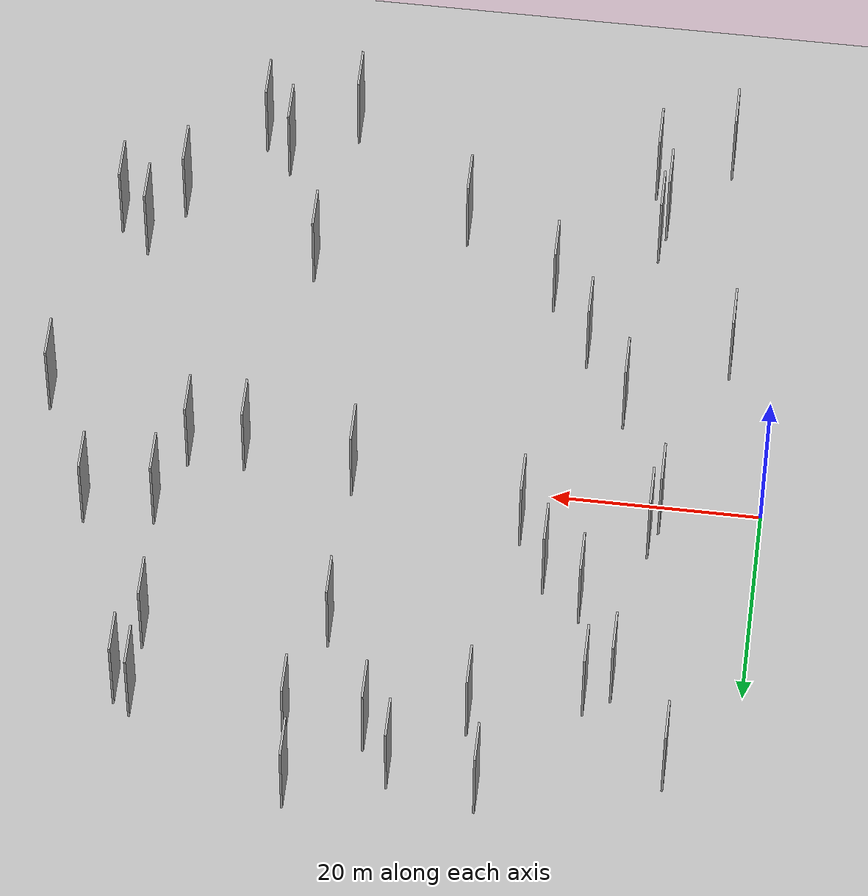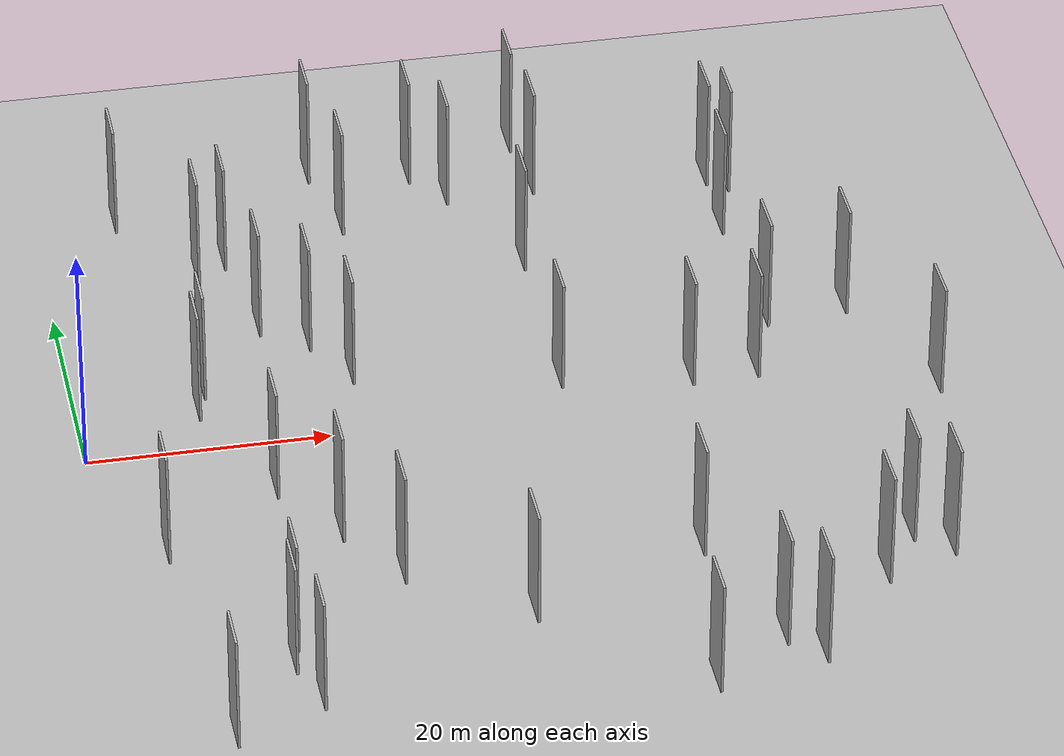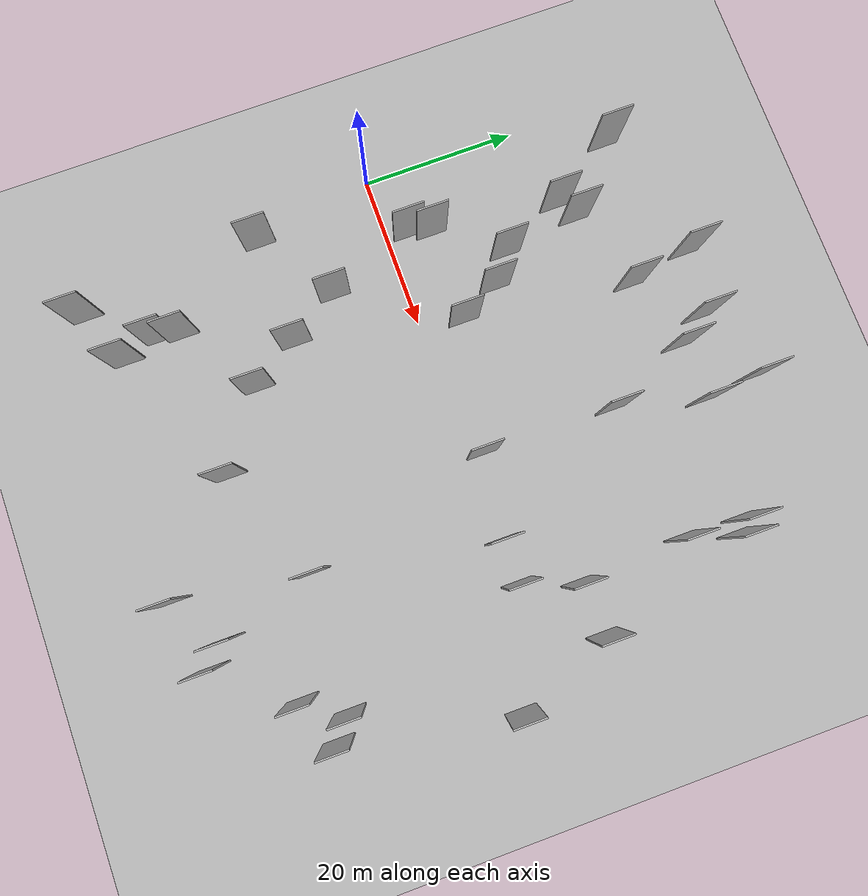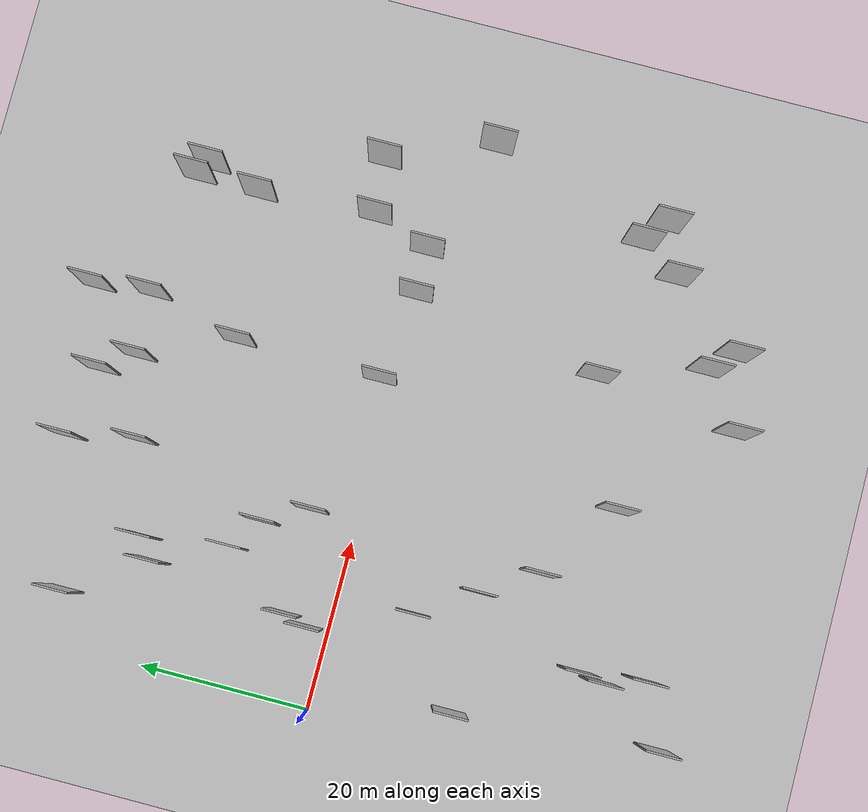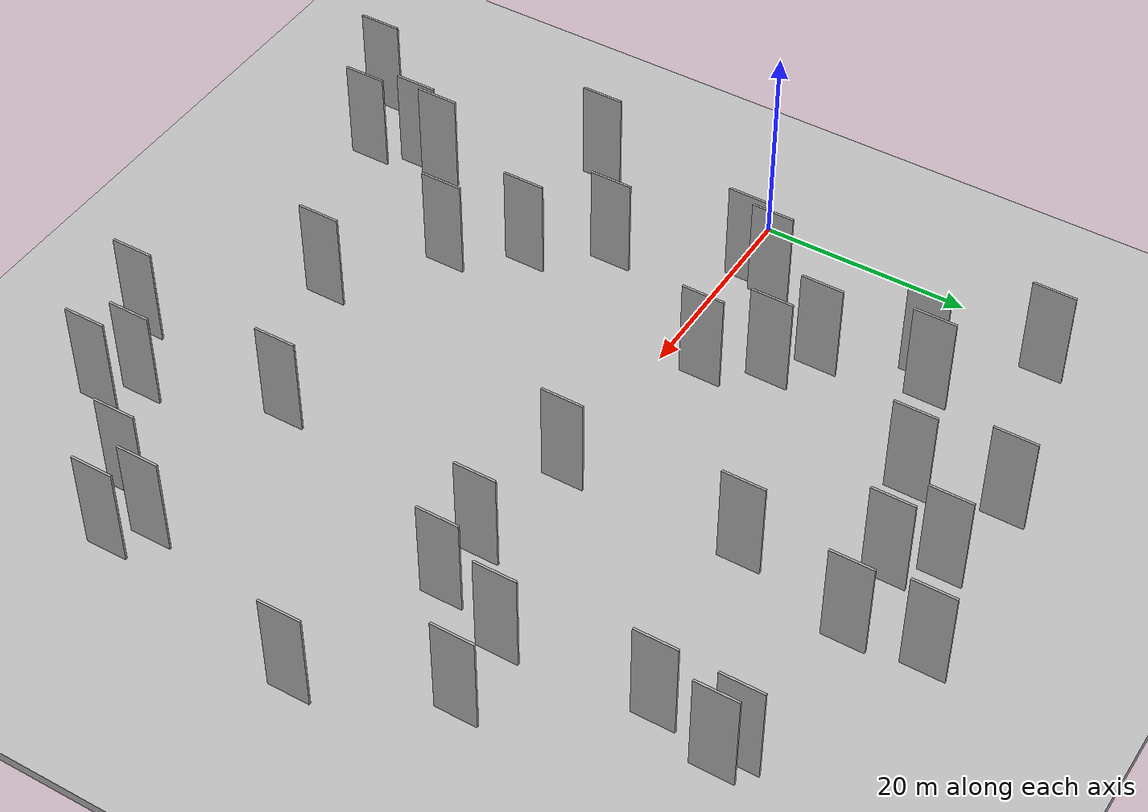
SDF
<?xml version="1.0" encoding="utf-8"?>

<sdf version="1.6">

   <world name="default">

      <gui fullscreen="0">

         <camera name="user_camera">

            <pose>-15 0 4.57585 0 0 0</pose>

            <view_controller>orbit</view_controller>

         </camera>

      </gui>

      <scene>

         <sky>

           <clouds>

             <speed>12</speed>

           </clouds>

         </sky>

         <ambient>0.4 0.4 0.4 1</ambient>

         <background>0.7 0.7 0.7 1</background>

         <shadows>1</shadows>

      </scene>

      <gravity>0 0 -9.8066</gravity>

      <magnetic_field>6e-06 2.3e-05 -4.2e-05</magnetic_field>

      <physics default="0" name="default_physics" type="ode">

         <ode>

            <solver>

               <type>quick</type>

               <iters>10</iters>

               <sor>1.0</sor>

               <use_dynamic_moi_rescaling>0</use_dynamic_moi_rescaling>

            </solver>

            <constraints>

               <cfm>0</cfm>

               <erp>0.2</erp>

               <contact_max_correcting_vel>100</contact_max_correcting_vel>

               <contact_surface_layer>0.001</contact_surface_layer>

            </constraints>

         </ode>

         <max_step_size>0.004</max_step_size>

         <real_time_factor>1</real_time_factor>

         <real_time_update_rate>250</real_time_update_rate>

      </physics>

      <light name="sun" type="directional">

         <cast_shadows>1</cast_shadows>

         <pose>0 0 10 0 0 0</pose>

         <diffuse>0.8 0.8 0.8 1</diffuse>

         <specular>0.2 0.2 0.2 1</specular>

         <attenuation>

            <range>1000</range>

            <constant>0.9</constant>

            <linear>0.01</linear>

            <quadratic>0.001</quadratic>

         </attenuation>

         <direction>-0.5 0.1 -0.9</direction>

      </light>

      <include>

         <name>ground_plane_1</name>

         <uri>model://HANNAS_ground_plane</uri>

         <pose>0 0 0  0 0 0</pose>

      </include>

      <include>

         <name>ground_plane_2</name>

         <uri>model://HANNAS_ground_plane</uri>

         <pose>100 0 0  0 0 0</pose>

      </include>

      <model name="HANNAS_wall_1">

         <static>1</static>

         <pose frame="">31.9503 32.8959 2.5 0.000000 0.000000 1.570796</pose>

         <link name="link">

            <pose frame="">0 0 5.00 0 0 0</pose>

            <collision name="collision">

               <geometry>

                  <box>

                     <size>4.00 0.2 10.00</size>

                  </box>

               </geometry>

               <max_contacts>10</max_contacts>

               <surface>

                  <contact>

                     <ode/>

                  </contact>

                  <bounce/>

                  <friction>

                     <torsional>

                        <ode/>

                     </torsional>

                     <ode/>

                  </friction>

               </surface>

            </collision>

            <visual name="visual">

               <cast_shadows>0</cast_shadows>

               <geometry>

                  <box>

                     <size>4.00 0.2 10.00</size>

                  </box>

               </geometry>

               <material>

                  <script>

                     <uri>model://HANNAS_wall/materials/scripts</uri>

                     <uri>model://HANNAS_wall/materials/textures</uri>

                     <name>vrc/HANNAS_wall</name>

                  </script>

               </material>

            </visual>

            <self_collide>0</self_collide>

            <enable_wind>0</enable_wind>

            <kinematic>0</kinematic>

         </link>

      </model>

      <model name="HANNAS_wall_2">

         <static>1</static>

         <pose frame="">68.8717 -4.7218 2.5 0.000000 0.000000 1.570796</pose>

         <link name="link">

            <pose frame="">0 0 5.00 0 0 0</pose>

            <collision name="collision">

               <geometry>

                  <box>

                     <size>4.00 0.2 10.00</size>

                  </box>

               </geometry>

               <max_contacts>10</max_contacts>

               <surface>

                  <contact>

                     <ode/>

                  </contact>

                  <bounce/>

                  <friction>

                     <torsional>

                        <ode/>

                     </torsional>

                     <ode/>

                  </friction>

               </surface>

            </collision>

            <visual name="visual">

               <cast_shadows>0</cast_shadows>

               <geometry>

                  <box>

                     <size>4.00 0.2 10.00</size>

                  </box>

               </geometry>

               <material>

                  <script>

                     <uri>model://HANNAS_wall/materials/scripts</uri>

                     <uri>model://HANNAS_wall/materials/textures</uri>

                     <name>vrc/HANNAS_wall</name>

                  </script>

               </material>

            </visual>

            <self_collide>0</self_collide>

            <enable_wind>0</enable_wind>

            <kinematic>0</kinematic>

         </link>

      </model>

      <model name="HANNAS_wall_3">

         <static>1</static>

         <pose frame="">19.7337 10.3597 2.5 0.000000 0.000000 1.570796</pose>

         <link name="link">

            <pose frame="">0 0 5.00 0 0 0</pose>

            <collision name="collision">

               <geometry>

                  <box>

                     <size>4.00 0.2 10.00</size>

                  </box>

               </geometry>

               <max_contacts>10</max_contacts>

               <surface>

                  <contact>

                     <ode/>

                  </contact>

                  <bounce/>

                  <friction>

                     <torsional>

                        <ode/>

                     </torsional>

                     <ode/>

                  </friction>

               </surface>

            </collision>

            <visual name="visual">

               <cast_shadows>0</cast_shadows>

               <geometry>

                  <box>

                     <size>4.00 0.2 10.00</size>

                  </box>

               </geometry>

               <material>

                  <script>

                     <uri>model://HANNAS_wall/materials/scripts</uri>

                     <uri>model://HANNAS_wall/materials/textures</uri>

                     <name>vrc/HANNAS_wall</name>

                  </script>

               </material>

            </visual>

            <self_collide>0</self_collide>

            <enable_wind>0</enable_wind>

            <kinematic>0</kinematic>

         </link>

      </model>

      <model name="HANNAS_wall_4">

         <static>1</static>

         <pose frame="">43.0934 -39.1946 2.5 0.000000 0.000000 1.570796</pose>

         <link name="link">

            <pose frame="">0 0 5.00 0 0 0</pose>

            <collision name="collision">

               <geometry>

                  <box>

                     <size>4.00 0.2 10.00</size>

                  </box>

               </geometry>

               <max_contacts>10</max_contacts>

               <surface>

                  <contact>

                     <ode/>

                  </contact>

                  <bounce/>

                  <friction>

                     <torsional>

                        <ode/>

                     </torsional>

                     <ode/>

                  </friction>

               </surface>

            </collision>

            <visual name="visual">

               <cast_shadows>0</cast_shadows>

               <geometry>

                  <box>

                     <size>4.00 0.2 10.00</size>

                  </box>

               </geometry>

               <material>

                  <script>

                     <uri>model://HANNAS_wall/materials/scripts</uri>

                     <uri>model://HANNAS_wall/materials/textures</uri>

                     <name>vrc/HANNAS_wall</name>

                  </script>

               </material>

            </visual>

            <self_collide>0</self_collide>

            <enable_wind>0</enable_wind>

            <kinematic>0</kinematic>

         </link>

      </model>

      <model name="HANNAS_wall_5">

         <static>1</static>

         <pose frame="">38.9406 1.5476 2.5 0.000000 0.000000 1.570796</pose>

         <link name="link">

            <pose frame="">0 0 5.00 0 0 0</pose>

            <collision name="collision">

               <geometry>

                  <box>

                     <size>4.00 0.2 10.00</size>

                  </box>

               </geometry>

               <max_contacts>10</max_contacts>

               <surface>

                  <contact>

                     <ode/>

                  </contact>

                  <bounce/>

                  <friction>

                     <torsional>

                        <ode/>

                     </torsional>

                     <ode/>

                  </friction>

               </surface>

            </collision>

            <visual name="visual">

               <cast_shadows>0</cast_shadows>

               <geometry>

                  <box>

                     <size>4.00 0.2 10.00</size>

                  </box>

               </geometry>

               <material>

                  <script>

                     <uri>model://HANNAS_wall/materials/scripts</uri>

                     <uri>model://HANNAS_wall/materials/textures</uri>

                     <name>vrc/HANNAS_wall</name>

                  </script>

               </material>

            </visual>

            <self_collide>0</self_collide>

            <enable_wind>0</enable_wind>

            <kinematic>0</kinematic>

         </link>

      </model>

      <model name="HANNAS_wall_6">

         <static>1</static>

         <pose frame="">64.7771 -25.9482 2.5 0.000000 0.000000 1.570796</pose>

         <link name="link">

            <pose frame="">0 0 5.00 0 0 0</pose>

            <collision name="collision">

               <geometry>

                  <box>

                     <size>4.00 0.2 10.00</size>

                  </box>

               </geometry>

               <max_contacts>10</max_contacts>

               <surface>

                  <contact>

                     <ode/>

                  </contact>

                  <bounce/>

                  <friction>

                     <torsional>

                        <ode/>

                     </torsional>

                     <ode/>

                  </friction>

               </surface>

            </collision>

            <visual name="visual">

               <cast_shadows>0</cast_shadows>

               <geometry>

                  <box>

                     <size>4.00 0.2 10.00</size>

                  </box>

               </geometry>

               <material>

                  <script>

                     <uri>model://HANNAS_wall/materials/scripts</uri>

                     <uri>model://HANNAS_wall/materials/textures</uri>

                     <name>vrc/HANNAS_wall</name>

                  </script>

               </material>

            </visual>

            <self_collide>0</self_collide>

            <enable_wind>0</enable_wind>

            <kinematic>0</kinematic>

         </link>

      </model>

      <model name="HANNAS_wall_7">

         <static>1</static>

         <pose frame="">57.2019 6.8845 2.5 0.000000 0.000000 1.570796</pose>

         <link name="link">

            <pose frame="">0 0 5.00 0 0 0</pose>

            <collision name="collision">

               <geometry>

                  <box>

                     <size>4.00 0.2 10.00</size>

                  </box>

               </geometry>

               <max_contacts>10</max_contacts>

               <surface>

                  <contact>

                     <ode/>

                  </contact>

                  <bounce/>

                  <friction>

                     <torsional>

                        <ode/>

                     </torsional>

                     <ode/>

                  </friction>

               </surface>

            </collision>

            <visual name="visual">

               <cast_shadows>0</cast_shadows>

               <geometry>

                  <box>

                     <size>4.00 0.2 10.00</size>

                  </box>

               </geometry>

               <material>

                  <script>

                     <uri>model://HANNAS_wall/materials/scripts</uri>

                     <uri>model://HANNAS_wall/materials/textures</uri>

                     <name>vrc/HANNAS_wall</name>

                  </script>

               </material>

            </visual>

            <self_collide>0</self_collide>

            <enable_wind>0</enable_wind>

            <kinematic>0</kinematic>

         </link>

      </model>

      <model name="HANNAS_wall_8">

         <static>1</static>

         <pose frame="">21.9686 -21.5292 2.5 0.000000 0.000000 1.570796</pose>

         <link name="link">

            <pose frame="">0 0 5.00 0 0 0</pose>

            <collision name="collision">

               <geometry>

                  <box>

                     <size>4.00 0.2 10.00</size>

                  </box>

               </geometry>

               <max_contacts>10</max_contacts>

               <surface>

                  <contact>

                     <ode/>

                  </contact>

                  <bounce/>

                  <friction>

                     <torsional>

                        <ode/>

                     </torsional>

                     <ode/>

                  </friction>

               </surface>

            </collision>

            <visual name="visual">

               <cast_shadows>0</cast_shadows>

               <geometry>

                  <box>

                     <size>4.00 0.2 10.00</size>

                  </box>

               </geometry>

               <material>

                  <script>

                     <uri>model://HANNAS_wall/materials/scripts</uri>

                     <uri>model://HANNAS_wall/materials/textures</uri>

                     <name>vrc/HANNAS_wall</name>

                  </script>

               </material>

            </visual>

            <self_collide>0</self_collide>

            <enable_wind>0</enable_wind>

            <kinematic>0</kinematic>

         </link>

      </model>

      <model name="HANNAS_wall_9">

         <static>1</static>

         <pose frame="">9.4841 2.5452 2.5 0.000000 0.000000 1.570796</pose>

         <link name="link">

            <pose frame="">0 0 5.00 0 0 0</pose>

            <collision name="collision">

               <geometry>

                  <box>

                     <size>4.00 0.2 10.00</size>

                  </box>

               </geometry>

               <max_contacts>10</max_contacts>

               <surface>

                  <contact>

                     <ode/>

                  </contact>

                  <bounce/>

                  <friction>

                     <torsional>

                        <ode/>

                     </torsional>

                     <ode/>

                  </friction>

               </surface>

            </collision>

            <visual name="visual">

               <cast_shadows>0</cast_shadows>

               <geometry>

                  <box>

                     <size>4.00 0.2 10.00</size>

                  </box>

               </geometry>

               <material>

                  <script>

                     <uri>model://HANNAS_wall/materials/scripts</uri>

                     <uri>model://HANNAS_wall/materials/textures</uri>

                     <name>vrc/HANNAS_wall</name>

                  </script>

               </material>

            </visual>

            <self_collide>0</self_collide>

            <enable_wind>0</enable_wind>

            <kinematic>0</kinematic>

         </link>

      </model>

      <model name="HANNAS_wall_10">

         <static>1</static>

         <pose frame="">12.2216 21.3831 2.5 0.000000 0.000000 1.570796</pose>

         <link name="link">

            <pose frame="">0 0 5.00 0 0 0</pose>

            <collision name="collision">

               <geometry>

                  <box>

                     <size>4.00 0.2 10.00</size>

                  </box>

               </geometry>

               <max_contacts>10</max_contacts>

               <surface>

                  <contact>

                     <ode/>

                  </contact>

                  <bounce/>

                  <friction>

                     <torsional>

                        <ode/>

                     </torsional>

                     <ode/>

                  </friction>

               </surface>

            </collision>

            <visual name="visual">

               <cast_shadows>0</cast_shadows>

               <geometry>

                  <box>

                     <size>4.00 0.2 10.00</size>

                  </box>

               </geometry>

               <material>

                  <script>

                     <uri>model://HANNAS_wall/materials/scripts</uri>

                     <uri>model://HANNAS_wall/materials/textures</uri>

                     <name>vrc/HANNAS_wall</name>

                  </script>

               </material>

            </visual>

            <self_collide>0</self_collide>

            <enable_wind>0</enable_wind>

            <kinematic>0</kinematic>

         </link>

      </model>

      <model name="HANNAS_wall_11">

         <static>1</static>

         <pose frame="">6.1070 -39.0108 2.5 0.000000 0.000000 1.570796</pose>

         <link name="link">

            <pose frame="">0 0 5.00 0 0 0</pose>

            <collision name="collision">

               <geometry>

                  <box>

                     <size>4.00 0.2 10.00</size>

                  </box>

               </geometry>

               <max_contacts>10</max_contacts>

               <surface>

                  <contact>

                     <ode/>

                  </contact>

                  <bounce/>

                  <friction>

                     <torsional>

                        <ode/>

                     </torsional>

                     <ode/>

                  </friction>

               </surface>

            </collision>

            <visual name="visual">

               <cast_shadows>0</cast_shadows>

               <geometry>

                  <box>

                     <size>4.00 0.2 10.00</size>

                  </box>

               </geometry>

               <material>

                  <script>

                     <uri>model://HANNAS_wall/materials/scripts</uri>

                     <uri>model://HANNAS_wall/materials/textures</uri>

                     <name>vrc/HANNAS_wall</name>

                  </script>

               </material>

            </visual>

            <self_collide>0</self_collide>

            <enable_wind>0</enable_wind>

            <kinematic>0</kinematic>

         </link>

      </model>

      <model name="HANNAS_wall_12">

         <static>1</static>

         <pose frame="">58.2623 26.7752 2.5 0.000000 0.000000 1.570796</pose>

         <link name="link">

            <pose frame="">0 0 5.00 0 0 0</pose>

            <collision name="collision">

               <geometry>

                  <box>

                     <size>4.00 0.2 10.00</size>

                  </box>

               </geometry>

               <max_contacts>10</max_contacts>

               <surface>

                  <contact>

                     <ode/>

                  </contact>

                  <bounce/>

                  <friction>

                     <torsional>

                        <ode/>

                     </torsional>

                     <ode/>

                  </friction>

               </surface>

            </collision>

            <visual name="visual">

               <cast_shadows>0</cast_shadows>

               <geometry>

                  <box>

                     <size>4.00 0.2 10.00</size>

                  </box>

               </geometry>

               <material>

                  <script>

                     <uri>model://HANNAS_wall/materials/scripts</uri>

                     <uri>model://HANNAS_wall/materials/textures</uri>

                     <name>vrc/HANNAS_wall</name>

                  </script>

               </material>

            </visual>

            <self_collide>0</self_collide>

            <enable_wind>0</enable_wind>

            <kinematic>0</kinematic>

         </link>

      </model>

      <model name="HANNAS_wall_13">

         <static>1</static>

         <pose frame="">14.6903 23.0575 2.5 0.000000 0.000000 1.570796</pose>

         <link name="link">

            <pose frame="">0 0 5.00 0 0 0</pose>

            <collision name="collision">

               <geometry>

                  <box>

                     <size>4.00 0.2 10.00</size>

                  </box>

               </geometry>

               <max_contacts>10</max_contacts>

               <surface>

                  <contact>

                     <ode/>

                  </contact>

                  <bounce/>

                  <friction>

                     <torsional>

                        <ode/>

                     </torsional>

                     <ode/>

                  </friction>

               </surface>

            </collision>

            <visual name="visual">

               <cast_shadows>0</cast_shadows>

               <geometry>

                  <box>

                     <size>4.00 0.2 10.00</size>

                  </box>

               </geometry>

               <material>

                  <script>

                     <uri>model://HANNAS_wall/materials/scripts</uri>

                     <uri>model://HANNAS_wall/materials/textures</uri>

                     <name>vrc/HANNAS_wall</name>

                  </script>

               </material>

            </visual>

            <self_collide>0</self_collide>

            <enable_wind>0</enable_wind>

            <kinematic>0</kinematic>

         </link>

      </model>

      <model name="HANNAS_wall_14">

         <static>1</static>

         <pose frame="">23.5910 34.5217 2.5 0.000000 0.000000 1.570796</pose>

         <link name="link">

            <pose frame="">0 0 5.00 0 0 0</pose>

            <collision name="collision">

               <geometry>

                  <box>

                     <size>4.00 0.2 10.00</size>

                  </box>

               </geometry>

               <max_contacts>10</max_contacts>

               <surface>

                  <contact>

                     <ode/>

                  </contact>

                  <bounce/>

                  <friction>

                     <torsional>

                        <ode/>

                     </torsional>

                     <ode/>

                  </friction>

               </surface>

            </collision>

            <visual name="visual">

               <cast_shadows>0</cast_shadows>

               <geometry>

                  <box>

                     <size>4.00 0.2 10.00</size>

                  </box>

               </geometry>

               <material>

                  <script>

                     <uri>model://HANNAS_wall/materials/scripts</uri>

                     <uri>model://HANNAS_wall/materials/textures</uri>

                     <name>vrc/HANNAS_wall</name>

                  </script>

               </material>

            </visual>

            <self_collide>0</self_collide>

            <enable_wind>0</enable_wind>

            <kinematic>0</kinematic>

         </link>

      </model>

      <model name="HANNAS_wall_15">

         <static>1</static>

         <pose frame="">62.0115 -23.6077 2.5 0.000000 0.000000 1.570796</pose>

         <link name="link">

            <pose frame="">0 0 5.00 0 0 0</pose>

            <collision name="collision">

               <geometry>

                  <box>

                     <size>4.00 0.2 10.00</size>

                  </box>

               </geometry>

               <max_contacts>10</max_contacts>

               <surface>

                  <contact>

                     <ode/>

                  </contact>

                  <bounce/>

                  <friction>

                     <torsional>

                        <ode/>

                     </torsional>

                     <ode/>

                  </friction>

               </surface>

            </collision>

            <visual name="visual">

               <cast_shadows>0</cast_shadows>

               <geometry>

                  <box>

                     <size>4.00 0.2 10.00</size>

                  </box>

               </geometry>

               <material>

                  <script>

                     <uri>model://HANNAS_wall/materials/scripts</uri>

                     <uri>model://HANNAS_wall/materials/textures</uri>

                     <name>vrc/HANNAS_wall</name>

                  </script>

               </material>

            </visual>

            <self_collide>0</self_collide>

            <enable_wind>0</enable_wind>

            <kinematic>0</kinematic>

         </link>

      </model>

      <model name="HANNAS_wall_16">

         <static>1</static>

         <pose frame="">39.1364 18.4149 2.5 0.000000 0.000000 1.570796</pose>

         <link name="link">

            <pose frame="">0 0 5.00 0 0 0</pose>

            <collision name="collision">

               <geometry>

                  <box>

                     <size>4.00 0.2 10.00</size>

                  </box>

               </geometry>

               <max_contacts>10</max_contacts>

               <surface>

                  <contact>

                     <ode/>

                  </contact>

                  <bounce/>

                  <friction>

                     <torsional>

                        <ode/>

                     </torsional>

                     <ode/>

                  </friction>

               </surface>

            </collision>

            <visual name="visual">

               <cast_shadows>0</cast_shadows>

               <geometry>

                  <box>

                     <size>4.00 0.2 10.00</size>

                  </box>

               </geometry>

               <material>

                  <script>

                     <uri>model://HANNAS_wall/materials/scripts</uri>

                     <uri>model://HANNAS_wall/materials/textures</uri>

                     <name>vrc/HANNAS_wall</name>

                  </script>

               </material>

            </visual>

            <self_collide>0</self_collide>

            <enable_wind>0</enable_wind>

            <kinematic>0</kinematic>

         </link>

      </model>

      <model name="HANNAS_wall_17">

         <static>1</static>

         <pose frame="">56.6395 27.9971 2.5 0.000000 0.000000 1.570796</pose>

         <link name="link">

            <pose frame="">0 0 5.00 0 0 0</pose>

            <collision name="collision">

               <geometry>

                  <box>

                     <size>4.00 0.2 10.00</size>

                  </box>

               </geometry>

               <max_contacts>10</max_contacts>

               <surface>

                  <contact>

                     <ode/>

                  </contact>

                  <bounce/>

                  <friction>

                     <torsional>

                        <ode/>

                     </torsional>

                     <ode/>

                  </friction>

               </surface>

            </collision>

            <visual name="visual">

               <cast_shadows>0</cast_shadows>

               <geometry>

                  <box>

                     <size>4.00 0.2 10.00</size>

                  </box>

               </geometry>

               <material>

                  <script>

                     <uri>model://HANNAS_wall/materials/scripts</uri>

                     <uri>model://HANNAS_wall/materials/textures</uri>

                     <name>vrc/HANNAS_wall</name>

                  </script>

               </material>

            </visual>

            <self_collide>0</self_collide>

            <enable_wind>0</enable_wind>

            <kinematic>0</kinematic>

         </link>

      </model>

      <model name="HANNAS_wall_18">

         <static>1</static>

         <pose frame="">34.5440 29.1507 2.5 0.000000 0.000000 1.570796</pose>

         <link name="link">

            <pose frame="">0 0 5.00 0 0 0</pose>

            <collision name="collision">

               <geometry>

                  <box>

                     <size>4.00 0.2 10.00</size>

                  </box>

               </geometry>

               <max_contacts>10</max_contacts>

               <surface>

                  <contact>

                     <ode/>

                  </contact>

                  <bounce/>

                  <friction>

                     <torsional>

                        <ode/>

                     </torsional>

                     <ode/>

                  </friction>

               </surface>

            </collision>

            <visual name="visual">

               <cast_shadows>0</cast_shadows>

               <geometry>

                  <box>

                     <size>4.00 0.2 10.00</size>

                  </box>

               </geometry>

               <material>

                  <script>

                     <uri>model://HANNAS_wall/materials/scripts</uri>

                     <uri>model://HANNAS_wall/materials/textures</uri>

                     <name>vrc/HANNAS_wall</name>

                  </script>

               </material>

            </visual>

            <self_collide>0</self_collide>

            <enable_wind>0</enable_wind>

            <kinematic>0</kinematic>

         </link>

      </model>

      <model name="HANNAS_wall_19">

         <static>1</static>

         <pose frame="">45.4945 -22.3364 2.5 0.000000 0.000000 1.570796</pose>

         <link name="link">

            <pose frame="">0 0 5.00 0 0 0</pose>

            <collision name="collision">

               <geometry>

                  <box>

                     <size>4.00 0.2 10.00</size>

                  </box>

               </geometry>

               <max_contacts>10</max_contacts>

               <surface>

                  <contact>

                     <ode/>

                  </contact>

                  <bounce/>

                  <friction>

                     <torsional>

                        <ode/>

                     </torsional>

                     <ode/>

                  </friction>

               </surface>

            </collision>

            <visual name="visual">

               <cast_shadows>0</cast_shadows>

               <geometry>

                  <box>

                     <size>4.00 0.2 10.00</size>

                  </box>

               </geometry>

               <material>

                  <script>

                     <uri>model://HANNAS_wall/materials/scripts</uri>

                     <uri>model://HANNAS_wall/materials/textures</uri>

                     <name>vrc/HANNAS_wall</name>

                  </script>

               </material>

            </visual>

            <self_collide>0</self_collide>

            <enable_wind>0</enable_wind>

            <kinematic>0</kinematic>

         </link>

      </model>

      <model name="HANNAS_wall_20">

         <static>1</static>

         <pose frame="">12.3892 -28.4070 2.5 0.000000 0.000000 1.570796</pose>

         <link name="link">

            <pose frame="">0 0 5.00 0 0 0</pose>

            <collision name="collision">

               <geometry>

                  <box>

                     <size>4.00 0.2 10.00</size>

                  </box>

               </geometry>

               <max_contacts>10</max_contacts>

               <surface>

                  <contact>

                     <ode/>

                  </contact>

                  <bounce/>

                  <friction>

                     <torsional>

                        <ode/>

                     </torsional>

                     <ode/>

                  </friction>

               </surface>

            </collision>

            <visual name="visual">

               <cast_shadows>0</cast_shadows>

               <geometry>

                  <box>

                     <size>4.00 0.2 10.00</size>

                  </box>

               </geometry>

               <material>

                  <script>

                     <uri>model://HANNAS_wall/materials/scripts</uri>

                     <uri>model://HANNAS_wall/materials/textures</uri>

                     <name>vrc/HANNAS_wall</name>

                  </script>

               </material>

            </visual>

            <self_collide>0</self_collide>

            <enable_wind>0</enable_wind>

            <kinematic>0</kinematic>

         </link>

      </model>

      <model name="HANNAS_wall_21">

         <static>1</static>

         <pose frame="">54.8642 0.0872 2.5 0.000000 0.000000 1.570796</pose>

         <link name="link">

            <pose frame="">0 0 5.00 0 0 0</pose>

            <collision name="collision">

               <geometry>

                  <box>

                     <size>4.00 0.2 10.00</size>

                  </box>

               </geometry>

               <max_contacts>10</max_contacts>

               <surface>

                  <contact>

                     <ode/>

                  </contact>

                  <bounce/>

                  <friction>

                     <torsional>

                        <ode/>

                     </torsional>

                     <ode/>

                  </friction>

               </surface>

            </collision>

            <visual name="visual">

               <cast_shadows>0</cast_shadows>

               <geometry>

                  <box>

                     <size>4.00 0.2 10.00</size>

                  </box>

               </geometry>

               <material>

                  <script>

                     <uri>model://HANNAS_wall/materials/scripts</uri>

                     <uri>model://HANNAS_wall/materials/textures</uri>

                     <name>vrc/HANNAS_wall</name>

                  </script>

               </material>

            </visual>

            <self_collide>0</self_collide>

            <enable_wind>0</enable_wind>

            <kinematic>0</kinematic>

         </link>

      </model>

      <model name="HANNAS_wall_22">

         <static>1</static>

         <pose frame="">25.1687 26.4537 2.5 0.000000 0.000000 1.570796</pose>

         <link name="link">

            <pose frame="">0 0 5.00 0 0 0</pose>

            <collision name="collision">

               <geometry>

                  <box>

                     <size>4.00 0.2 10.00</size>

                  </box>

               </geometry>

               <max_contacts>10</max_contacts>

               <surface>

                  <contact>

                     <ode/>

                  </contact>

                  <bounce/>

                  <friction>

                     <torsional>

                        <ode/>

                     </torsional>

                     <ode/>

                  </friction>

               </surface>

            </collision>

            <visual name="visual">

               <cast_shadows>0</cast_shadows>

               <geometry>

                  <box>

                     <size>4.00 0.2 10.00</size>

                  </box>

               </geometry>

               <material>

                  <script>

                     <uri>model://HANNAS_wall/materials/scripts</uri>

                     <uri>model://HANNAS_wall/materials/textures</uri>

                     <name>vrc/HANNAS_wall</name>

                  </script>

               </material>

            </visual>

            <self_collide>0</self_collide>

            <enable_wind>0</enable_wind>

            <kinematic>0</kinematic>

         </link>

      </model>

      <model name="HANNAS_wall_23">

         <static>1</static>

         <pose frame="">51.9280 -37.1989 2.5 0.000000 0.000000 1.570796</pose>

         <link name="link">

            <pose frame="">0 0 5.00 0 0 0</pose>

            <collision name="collision">

               <geometry>

                  <box>

                     <size>4.00 0.2 10.00</size>

                  </box>

               </geometry>

               <max_contacts>10</max_contacts>

               <surface>

                  <contact>

                     <ode/>

                  </contact>

                  <bounce/>

                  <friction>

                     <torsional>

                        <ode/>

                     </torsional>

                     <ode/>

                  </friction>

               </surface>

            </collision>

            <visual name="visual">

               <cast_shadows>0</cast_shadows>

               <geometry>

                  <box>

                     <size>4.00 0.2 10.00</size>

                  </box>

               </geometry>

               <material>

                  <script>

                     <uri>model://HANNAS_wall/materials/scripts</uri>

                     <uri>model://HANNAS_wall/materials/textures</uri>

                     <name>vrc/HANNAS_wall</name>

                  </script>

               </material>

            </visual>

            <self_collide>0</self_collide>

            <enable_wind>0</enable_wind>

            <kinematic>0</kinematic>

         </link>

      </model>

      <model name="HANNAS_wall_24">

         <static>1</static>

         <pose frame="">56.4216 20.5683 2.5 0.000000 0.000000 1.570796</pose>

         <link name="link">

            <pose frame="">0 0 5.00 0 0 0</pose>

            <collision name="collision">

               <geometry>

                  <box>

                     <size>4.00 0.2 10.00</size>

                  </box>

               </geometry>

               <max_contacts>10</max_contacts>

               <surface>

                  <contact>

                     <ode/>

                  </contact>

                  <bounce/>

                  <friction>

                     <torsional>

                        <ode/>

                     </torsional>

                     <ode/>

                  </friction>

               </surface>

            </collision>

            <visual name="visual">

               <cast_shadows>0</cast_shadows>

               <geometry>

                  <box>

                     <size>4.00 0.2 10.00</size>

                  </box>

               </geometry>

               <material>

                  <script>

                     <uri>model://HANNAS_wall/materials/scripts</uri>

                     <uri>model://HANNAS_wall/materials/textures</uri>

                     <name>vrc/HANNAS_wall</name>

                  </script>

               </material>

            </visual>

            <self_collide>0</self_collide>

            <enable_wind>0</enable_wind>

            <kinematic>0</kinematic>

         </link>

      </model>

      <model name="HANNAS_wall_25">

         <static>1</static>

         <pose frame="">49.4482 -0.0106 2.5 0.000000 0.000000 1.570796</pose>

         <link name="link">

            <pose frame="">0 0 5.00 0 0 0</pose>

            <collision name="collision">

               <geometry>

                  <box>

                     <size>4.00 0.2 10.00</size>

                  </box>

               </geometry>

               <max_contacts>10</max_contacts>

               <surface>

                  <contact>

                     <ode/>

                  </contact>

                  <bounce/>

                  <friction>

                     <torsional>

                        <ode/>

                     </torsional>

                     <ode/>

                  </friction>

               </surface>

            </collision>

            <visual name="visual">

               <cast_shadows>0</cast_shadows>

               <geometry>

                  <box>

                     <size>4.00 0.2 10.00</size>

                  </box>

               </geometry>

               <material>

                  <script>

                     <uri>model://HANNAS_wall/materials/scripts</uri>

                     <uri>model://HANNAS_wall/materials/textures</uri>

                     <name>vrc/HANNAS_wall</name>

                  </script>

               </material>

            </visual>

            <self_collide>0</self_collide>

            <enable_wind>0</enable_wind>

            <kinematic>0</kinematic>

         </link>

      </model>

      <model name="HANNAS_wall_26">

         <static>1</static>

         <pose frame="">16.0494 13.1838 2.5 0.000000 0.000000 1.570796</pose>

         <link name="link">

            <pose frame="">0 0 5.00 0 0 0</pose>

            <collision name="collision">

               <geometry>

                  <box>

                     <size>4.00 0.2 10.00</size>

                  </box>

               </geometry>

               <max_contacts>10</max_contacts>

               <surface>

                  <contact>

                     <ode/>

                  </contact>

                  <bounce/>

                  <friction>

                     <torsional>

                        <ode/>

                     </torsional>

                     <ode/>

                  </friction>

               </surface>

            </collision>

            <visual name="visual">

               <cast_shadows>0</cast_shadows>

               <geometry>

                  <box>

                     <size>4.00 0.2 10.00</size>

                  </box>

               </geometry>

               <material>

                  <script>

                     <uri>model://HANNAS_wall/materials/scripts</uri>

                     <uri>model://HANNAS_wall/materials/textures</uri>

                     <name>vrc/HANNAS_wall</name>

                  </script>

               </material>

            </visual>

            <self_collide>0</self_collide>

            <enable_wind>0</enable_wind>

            <kinematic>0</kinematic>

         </link>

      </model>

      <model name="HANNAS_wall_27">

         <static>1</static>

         <pose frame="">13.9716 -8.8955 2.5 0.000000 0.000000 1.570796</pose>

         <link name="link">

            <pose frame="">0 0 5.00 0 0 0</pose>

            <collision name="collision">

               <geometry>

                  <box>

                     <size>4.00 0.2 10.00</size>

                  </box>

               </geometry>

               <max_contacts>10</max_contacts>

               <surface>

                  <contact>

                     <ode/>

                  </contact>

                  <bounce/>

                  <friction>

                     <torsional>

                        <ode/>

                     </torsional>

                     <ode/>

                  </friction>

               </surface>

            </collision>

            <visual name="visual">

               <cast_shadows>0</cast_shadows>

               <geometry>

                  <box>

                     <size>4.00 0.2 10.00</size>

                  </box>

               </geometry>

               <material>

                  <script>

                     <uri>model://HANNAS_wall/materials/scripts</uri>

                     <uri>model://HANNAS_wall/materials/textures</uri>

                     <name>vrc/HANNAS_wall</name>

                  </script>

               </material>

            </visual>

            <self_collide>0</self_collide>

            <enable_wind>0</enable_wind>

            <kinematic>0</kinematic>

         </link>

      </model>

      <model name="HANNAS_wall_28">

         <static>1</static>

         <pose frame="">13.2574 -35.7822 2.5 0.000000 0.000000 1.570796</pose>

         <link name="link">

            <pose frame="">0 0 5.00 0 0 0</pose>

            <collision name="collision">

               <geometry>

                  <box>

                     <size>4.00 0.2 10.00</size>

                  </box>

               </geometry>

               <max_contacts>10</max_contacts>

               <surface>

                  <contact>

                     <ode/>

                  </contact>

                  <bounce/>

                  <friction>

                     <torsional>

                        <ode/>

                     </torsional>

                     <ode/>

                  </friction>

               </surface>

            </collision>

            <visual name="visual">

               <cast_shadows>0</cast_shadows>

               <geometry>

                  <box>

                     <size>4.00 0.2 10.00</size>

                  </box>

               </geometry>

               <material>

                  <script>

                     <uri>model://HANNAS_wall/materials/scripts</uri>

                     <uri>model://HANNAS_wall/materials/textures</uri>

                     <name>vrc/HANNAS_wall</name>

                  </script>

               </material>

            </visual>

            <self_collide>0</self_collide>

            <enable_wind>0</enable_wind>

            <kinematic>0</kinematic>

         </link>

      </model>

      <model name="HANNAS_wall_29">

         <static>1</static>

         <pose frame="">49.3860 -34.5320 2.5 0.000000 0.000000 1.570796</pose>

         <link name="link">

            <pose frame="">0 0 5.00 0 0 0</pose>

            <collision name="collision">

               <geometry>

                  <box>

                     <size>4.00 0.2 10.00</size>

                  </box>

               </geometry>

               <max_contacts>10</max_contacts>

               <surface>

                  <contact>

                     <ode/>

                  </contact>

                  <bounce/>

                  <friction>

                     <torsional>

                        <ode/>

                     </torsional>

                     <ode/>

                  </friction>

               </surface>

            </collision>

            <visual name="visual">

               <cast_shadows>0</cast_shadows>

               <geometry>

                  <box>

                     <size>4.00 0.2 10.00</size>

                  </box>

               </geometry>

               <material>

                  <script>

                     <uri>model://HANNAS_wall/materials/scripts</uri>

                     <uri>model://HANNAS_wall/materials/textures</uri>

                     <name>vrc/HANNAS_wall</name>

                  </script>

               </material>

            </visual>

            <self_collide>0</self_collide>

            <enable_wind>0</enable_wind>

            <kinematic>0</kinematic>

         </link>

      </model>

      <model name="HANNAS_wall_30">

         <static>1</static>

         <pose frame="">41.2580 35.9786 2.5 0.000000 0.000000 1.570796</pose>

         <link name="link">

            <pose frame="">0 0 5.00 0 0 0</pose>

            <collision name="collision">

               <geometry>

                  <box>

                     <size>4.00 0.2 10.00</size>

                  </box>

               </geometry>

               <max_contacts>10</max_contacts>

               <surface>

                  <contact>

                     <ode/>

                  </contact>

                  <bounce/>

                  <friction>

                     <torsional>

                        <ode/>

                     </torsional>

                     <ode/>

                  </friction>

               </surface>

            </collision>

            <visual name="visual">

               <cast_shadows>0</cast_shadows>

               <geometry>

                  <box>

                     <size>4.00 0.2 10.00</size>

                  </box>

               </geometry>

               <material>

                  <script>

                     <uri>model://HANNAS_wall/materials/scripts</uri>

                     <uri>model://HANNAS_wall/materials/textures</uri>

                     <name>vrc/HANNAS_wall</name>

                  </script>

               </material>

            </visual>

            <self_collide>0</self_collide>

            <enable_wind>0</enable_wind>

            <kinematic>0</kinematic>

         </link>

      </model>

      <model name="HANNAS_wall_31">

         <static>1</static>

         <pose frame="">10.2916 5.3088 2.5 0.000000 0.000000 1.570796</pose>

         <link name="link">

            <pose frame="">0 0 5.00 0 0 0</pose>

            <collision name="collision">

               <geometry>

                  <box>

                     <size>4.00 0.2 10.00</size>

                  </box>

               </geometry>

               <max_contacts>10</max_contacts>

               <surface>

                  <contact>

                     <ode/>

                  </contact>

                  <bounce/>

                  <friction>

                     <torsional>

                        <ode/>

                     </torsional>

                     <ode/>

                  </friction>

               </surface>

            </collision>

            <visual name="visual">

               <cast_shadows>0</cast_shadows>

               <geometry>

                  <box>

                     <size>4.00 0.2 10.00</size>

                  </box>

               </geometry>

               <material>

                  <script>

                     <uri>model://HANNAS_wall/materials/scripts</uri>

                     <uri>model://HANNAS_wall/materials/textures</uri>

                     <name>vrc/HANNAS_wall</name>

                  </script>

               </material>

            </visual>

            <self_collide>0</self_collide>

            <enable_wind>0</enable_wind>

            <kinematic>0</kinematic>

         </link>

      </model>

      <model name="HANNAS_wall_32">

         <static>1</static>

         <pose frame="">11.8504 -31.0997 2.5 0.000000 0.000000 1.570796</pose>

         <link name="link">

            <pose frame="">0 0 5.00 0 0 0</pose>

            <collision name="collision">

               <geometry>

                  <box>

                     <size>4.00 0.2 10.00</size>

                  </box>

               </geometry>

               <max_contacts>10</max_contacts>

               <surface>

                  <contact>

                     <ode/>

                  </contact>

                  <bounce/>

                  <friction>

                     <torsional>

                        <ode/>

                     </torsional>

                     <ode/>

                  </friction>

               </surface>

            </collision>

            <visual name="visual">

               <cast_shadows>0</cast_shadows>

               <geometry>

                  <box>

                     <size>4.00 0.2 10.00</size>

                  </box>

               </geometry>

               <material>

                  <script>

                     <uri>model://HANNAS_wall/materials/scripts</uri>

                     <uri>model://HANNAS_wall/materials/textures</uri>

                     <name>vrc/HANNAS_wall</name>

                  </script>

               </material>

            </visual>

            <self_collide>0</self_collide>

            <enable_wind>0</enable_wind>

            <kinematic>0</kinematic>

         </link>

      </model>

      <model name="HANNAS_wall_33">

         <static>1</static>

         <pose frame="">22.4370 5.2452 2.5 0.000000 0.000000 1.570796</pose>

         <link name="link">

            <pose frame="">0 0 5.00 0 0 0</pose>

            <collision name="collision">

               <geometry>

                  <box>

                     <size>4.00 0.2 10.00</size>

                  </box>

               </geometry>

               <max_contacts>10</max_contacts>

               <surface>

                  <contact>

                     <ode/>

                  </contact>

                  <bounce/>

                  <friction>

                     <torsional>

                        <ode/>

                     </torsional>

                     <ode/>

                  </friction>

               </surface>

            </collision>

            <visual name="visual">

               <cast_shadows>0</cast_shadows>

               <geometry>

                  <box>

                     <size>4.00 0.2 10.00</size>

                  </box>

               </geometry>

               <material>

                  <script>

                     <uri>model://HANNAS_wall/materials/scripts</uri>

                     <uri>model://HANNAS_wall/materials/textures</uri>

                     <name>vrc/HANNAS_wall</name>

                  </script>

               </material>

            </visual>

            <self_collide>0</self_collide>

            <enable_wind>0</enable_wind>

            <kinematic>0</kinematic>

         </link>

      </model>

      <model name="HANNAS_wall_34">

         <static>1</static>

         <pose frame="">4.3286 -15.6109 2.5 0.000000 0.000000 1.570796</pose>

         <link name="link">

            <pose frame="">0 0 5.00 0 0 0</pose>

            <collision name="collision">

               <geometry>

                  <box>

                     <size>4.00 0.2 10.00</size>

                  </box>

               </geometry>

               <max_contacts>10</max_contacts>

               <surface>

                  <contact>

                     <ode/>

                  </contact>

                  <bounce/>

                  <friction>

                     <torsional>

                        <ode/>

                     </torsional>

                     <ode/>

                  </friction>

               </surface>

            </collision>

            <visual name="visual">

               <cast_shadows>0</cast_shadows>

               <geometry>

                  <box>

                     <size>4.00 0.2 10.00</size>

                  </box>

               </geometry>

               <material>

                  <script>

                     <uri>model://HANNAS_wall/materials/scripts</uri>

                     <uri>model://HANNAS_wall/materials/textures</uri>

                     <name>vrc/HANNAS_wall</name>

                  </script>

               </material>

            </visual>

            <self_collide>0</self_collide>

            <enable_wind>0</enable_wind>

            <kinematic>0</kinematic>

         </link>

      </model>

      <model name="HANNAS_wall_35">

         <static>1</static>

         <pose frame="">63.9100 7.4844 2.5 0.000000 0.000000 1.570796</pose>

         <link name="link">

            <pose frame="">0 0 5.00 0 0 0</pose>

            <collision name="collision">

               <geometry>

                  <box>

                     <size>4.00 0.2 10.00</size>

                  </box>

               </geometry>

               <max_contacts>10</max_contacts>

               <surface>

                  <contact>

                     <ode/>

                  </contact>

                  <bounce/>

                  <friction>

                     <torsional>

                        <ode/>

                     </torsional>

                     <ode/>

                  </friction>

               </surface>

            </collision>

            <visual name="visual">

               <cast_shadows>0</cast_shadows>

               <geometry>

                  <box>

                     <size>4.00 0.2 10.00</size>

                  </box>

               </geometry>

               <material>

                  <script>

                     <uri>model://HANNAS_wall/materials/scripts</uri>

                     <uri>model://HANNAS_wall/materials/textures</uri>

                     <name>vrc/HANNAS_wall</name>

                  </script>

               </material>

            </visual>

            <self_collide>0</self_collide>

            <enable_wind>0</enable_wind>

            <kinematic>0</kinematic>

         </link>

      </model>

      <model name="HANNAS_wall_36">

         <static>1</static>

         <pose frame="">41.9633 29.3747 2.5 0.000000 0.000000 1.570796</pose>

         <link name="link">

            <pose frame="">0 0 5.00 0 0 0</pose>

            <collision name="collision">

               <geometry>

                  <box>

                     <size>4.00 0.2 10.00</size>

                  </box>

               </geometry>

               <max_contacts>10</max_contacts>

               <surface>

                  <contact>

                     <ode/>

                  </contact>

                  <bounce/>

                  <friction>

                     <torsional>

                        <ode/>

                     </torsional>

                     <ode/>

                  </friction>

               </surface>

            </collision>

            <visual name="visual">

               <cast_shadows>0</cast_shadows>

               <geometry>

                  <box>

                     <size>4.00 0.2 10.00</size>

                  </box>

               </geometry>

               <material>

                  <script>

                     <uri>model://HANNAS_wall/materials/scripts</uri>

                     <uri>model://HANNAS_wall/materials/textures</uri>

                     <name>vrc/HANNAS_wall</name>

                  </script>

               </material>

            </visual>

            <self_collide>0</self_collide>

            <enable_wind>0</enable_wind>

            <kinematic>0</kinematic>

         </link>

      </model>

      <model name="HANNAS_wall_37">

         <static>1</static>

         <pose frame="">58.8974 -28.4424 2.5 0.000000 0.000000 1.570796</pose>

         <link name="link">

            <pose frame="">0 0 5.00 0 0 0</pose>

            <collision name="collision">

               <geometry>

                  <box>

                     <size>4.00 0.2 10.00</size>

                  </box>

               </geometry>

               <max_contacts>10</max_contacts>

               <surface>

                  <contact>

                     <ode/>

                  </contact>

                  <bounce/>

                  <friction>

                     <torsional>

                        <ode/>

                     </torsional>

                     <ode/>

                  </friction>

               </surface>

            </collision>

            <visual name="visual">

               <cast_shadows>0</cast_shadows>

               <geometry>

                  <box>

                     <size>4.00 0.2 10.00</size>

                  </box>

               </geometry>

               <material>

                  <script>

                     <uri>model://HANNAS_wall/materials/scripts</uri>

                     <uri>model://HANNAS_wall/materials/textures</uri>

                     <name>vrc/HANNAS_wall</name>

                  </script>

               </material>

            </visual>

            <self_collide>0</self_collide>

            <enable_wind>0</enable_wind>

            <kinematic>0</kinematic>

         </link>

      </model>

      <model name="HANNAS_wall_38">

         <static>1</static>

         <pose frame="">6.5544 30.2019 2.5 0.000000 0.000000 1.570796</pose>

         <link name="link">

            <pose frame="">0 0 5.00 0 0 0</pose>

            <collision name="collision">

               <geometry>

                  <box>

                     <size>4.00 0.2 10.00</size>

                  </box>

               </geometry>

               <max_contacts>10</max_contacts>

               <surface>

                  <contact>

                     <ode/>

                  </contact>

                  <bounce/>

                  <friction>

                     <torsional>

                        <ode/>

                     </torsional>

                     <ode/>

                  </friction>

               </surface>

            </collision>

            <visual name="visual">

               <cast_shadows>0</cast_shadows>

               <geometry>

                  <box>

                     <size>4.00 0.2 10.00</size>

                  </box>

               </geometry>

               <material>

                  <script>

                     <uri>model://HANNAS_wall/materials/scripts</uri>

                     <uri>model://HANNAS_wall/materials/textures</uri>

                     <name>vrc/HANNAS_wall</name>

                  </script>

               </material>

            </visual>

            <self_collide>0</self_collide>

            <enable_wind>0</enable_wind>

            <kinematic>0</kinematic>

         </link>

      </model>

      <model name="HANNAS_wall_39">

         <static>1</static>

         <pose frame="">31.1271 -28.2200 2.5 0.000000 0.000000 1.570796</pose>

         <link name="link">

            <pose frame="">0 0 5.00 0 0 0</pose>

            <collision name="collision">

               <geometry>

                  <box>

                     <size>4.00 0.2 10.00</size>

                  </box>

               </geometry>

               <max_contacts>10</max_contacts>

               <surface>

                  <contact>

                     <ode/>

                  </contact>

                  <bounce/>

                  <friction>

                     <torsional>

                        <ode/>

                     </torsional>

                     <ode/>

                  </friction>

               </surface>

            </collision>

            <visual name="visual">

               <cast_shadows>0</cast_shadows>

               <geometry>

                  <box>

                     <size>4.00 0.2 10.00</size>

                  </box>

               </geometry>

               <material>

                  <script>

                     <uri>model://HANNAS_wall/materials/scripts</uri>

                     <uri>model://HANNAS_wall/materials/textures</uri>

                     <name>vrc/HANNAS_wall</name>

                  </script>

               </material>

            </visual>

            <self_collide>0</self_collide>

            <enable_wind>0</enable_wind>

            <kinematic>0</kinematic>

         </link>

      </model>

      <model name="HANNAS_wall_40">

         <static>1</static>

         <pose frame="">18.1129 -15.4071 2.5 0.000000 0.000000 1.570796</pose>

         <link name="link">

            <pose frame="">0 0 5.00 0 0 0</pose>

            <collision name="collision">

               <geometry>

                  <box>

                     <size>4.00 0.2 10.00</size>

                  </box>

               </geometry>

               <max_contacts>10</max_contacts>

               <surface>

                  <contact>

                     <ode/>

                  </contact>

                  <bounce/>

                  <friction>

                     <torsional>

                        <ode/>

                     </torsional>

                     <ode/>

                  </friction>

               </surface>

            </collision>

            <visual name="visual">

               <cast_shadows>0</cast_shadows>

               <geometry>

                  <box>

                     <size>4.00 0.2 10.00</size>

                  </box>

               </geometry>

               <material>

                  <script>

                     <uri>model://HANNAS_wall/materials/scripts</uri>

                     <uri>model://HANNAS_wall/materials/textures</uri>

                     <name>vrc/HANNAS_wall</name>

                  </script>

               </material>

            </visual>

            <self_collide>0</self_collide>

            <enable_wind>0</enable_wind>

            <kinematic>0</kinematic>

         </link>

      </model>

   </world>

</sdf>
